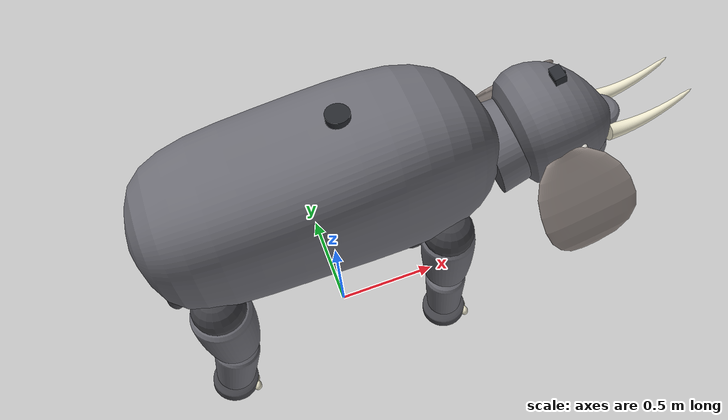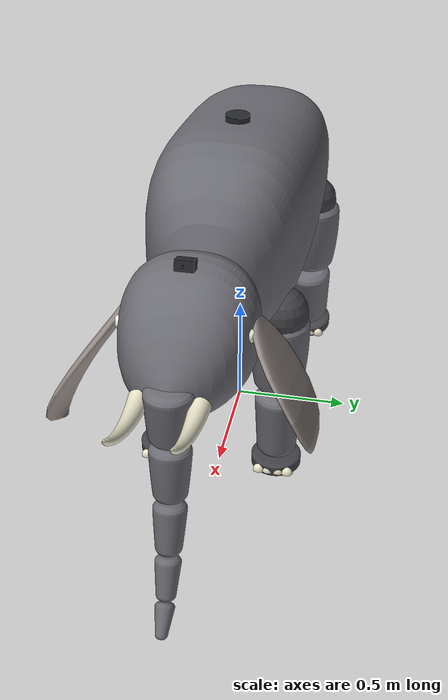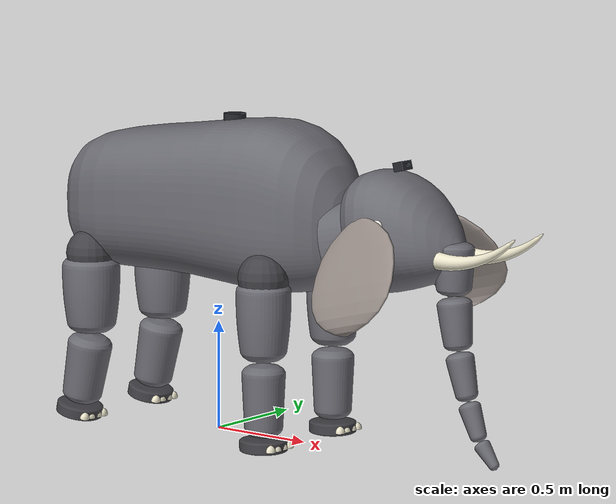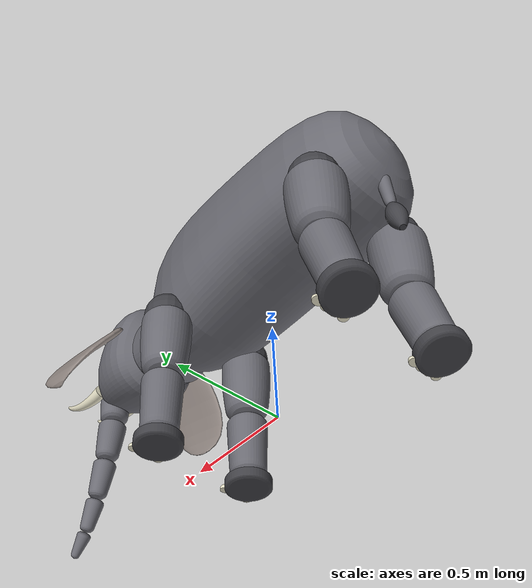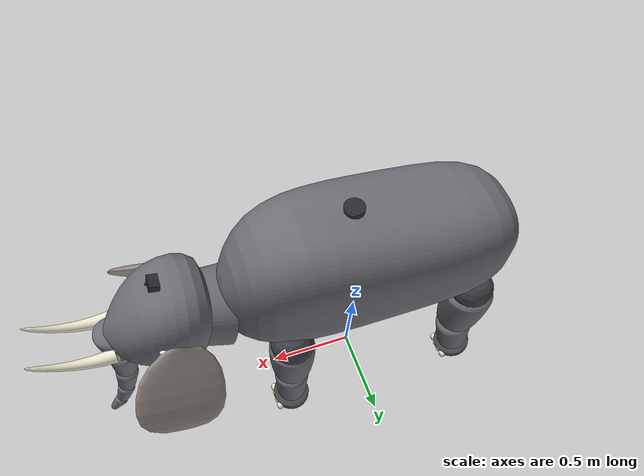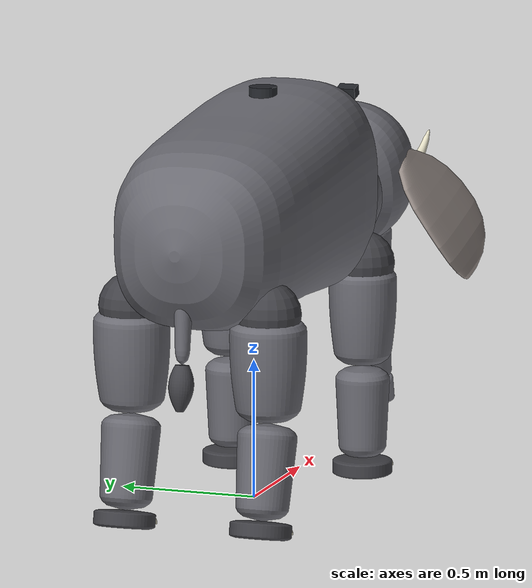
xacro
<?xml version="1.0"?>
<robot name="elephant_robot" xmlns:xacro="http://www.ros.org/wiki/xacro">

  <xacro:property name="MESH" value="package://elephant_robot/meshes"/>

  <!-- ================= geometry constants ================= -->
  <xacro:property name="hip_x_front" value="0.470"/>
  <xacro:property name="hip_x_rear"  value="-0.560"/>
  <xacro:property name="hip_y"       value="0.250"/>
  <xacro:property name="hip_z_front" value="0.780"/>
  <xacro:property name="hip_z_rear"  value="0.790"/>
  <xacro:property name="thigh_len"   value="0.380"/>
  <xacro:property name="shank_len"   value="0.340"/>
  <xacro:property name="foot_h"      value="0.060"/>
  <xacro:property name="knee_rear"   value="0.220"/>

  <xacro:property name="neck_x"     value="0.745"/>
  <xacro:property name="neck_z"     value="0.930"/>
  <xacro:property name="neck_len"   value="0.260"/>
  <xacro:property name="neck_pitch" value="0.250"/>

  <!-- ================= materials ================= -->
  <material name="elephant_grey">
    <color rgba="0.42 0.42 0.45 1.0"/>
  </material>
  <material name="elephant_skin_inner">
    <color rgba="0.58 0.54 0.52 1.0"/>
  </material>
  <material name="elephant_dark">
    <color rgba="0.26 0.26 0.28 1.0"/>
  </material>
  <material name="black">
    <color rgba="0.03 0.03 0.03 1.0"/>
  </material>
  <material name="ivory">
    <color rgba="0.92 0.90 0.80 1.0"/>
  </material>
  <material name="eye_white">
    <color rgba="0.94 0.93 0.90 1.0"/>
  </material>
  <material name="eye_black">
    <color rgba="0.01 0.01 0.01 1.0"/>
  </material>
  <material name="sensor_grey">
    <color rgba="0.15 0.16 0.18 1.0"/>
  </material>

  <!-- ================= inertia helpers ================= -->
  <xacro:macro name="box_inertia" params="m x y z">
    <inertial>
      <mass value="${m}"/>
      <inertia ixx="${(m/12.0)*(y*y + z*z)}" ixy="0.0" ixz="0.0"
               iyy="${(m/12.0)*(x*x + z*z)}" iyz="0.0" izz="${(m/12.0)*(x*x + y*y)}"/>
    </inertial>
  </xacro:macro>

  <xacro:macro name="cyl_inertia" params="m r h">
    <inertial>
      <mass value="${m}"/>
      <inertia ixx="${(m/12.0)*(3.0*r*r + h*h)}" ixy="0.0" ixz="0.0"
               iyy="${(m/12.0)*(3.0*r*r + h*h)}" iyz="0.0" izz="${(m/2.0)*(r*r)}"/>
    </inertial>
  </xacro:macro>

  <!-- ==================================================================
       TORSO
       ================================================================== -->
  <link name="base_link"/>

  <joint name="base_to_torso" type="fixed">
    <parent link="base_link"/>
    <child link="torso_link"/>
    <origin xyz="0 0 0" rpy="0 0 0"/>
  </joint>

  <link name="torso_link">
    <visual>
      <origin xyz="0 0 0" rpy="0 0 0"/>
      <geometry><mesh filename="${MESH}/body.stl"/></geometry>
      <material name="elephant_grey"/>
    </visual>
    <collision>
      <origin xyz="0 0 1.070" rpy="0 ${math.pi/2} 0"/>
      <geometry><cylinder radius="0.340" length="1.300"/></geometry>
    </collision>
    <inertial>
      <mass value="130.0"/>
      <origin xyz="0 0 1.070" rpy="0 0 0"/>
      <inertia ixx="10.942" ixy="0.0" ixz="0.0" iyy="27.167" iyz="0.0" izz="26.243"/>
    </inertial>
  </link>

  <!-- ==================================================================
       NECK + HEAD
       ================================================================== -->
  <link name="neck_link">
    <visual>
      <origin xyz="0 0 0" rpy="0 0 0"/>
      <geometry><mesh filename="${MESH}/neck.stl"/></geometry>
      <material name="elephant_grey"/>
    </visual>
    <collision>
      <origin xyz="0.130 0 0" rpy="0 ${math.pi/2} 0"/>
      <geometry><cylinder radius="0.190" length="0.260"/></geometry>
    </collision>
    <inertial>
      <mass value="12.0"/>
      <origin xyz="0.130 0 0" rpy="0 0 0"/>
      <inertia ixx="1.231" ixy="0.0" ixz="0.0" iyy="1.231" iyz="0.0" izz="0.217"/>
    </inertial>
  </link>

  <joint name="neck_pitch" type="revolute">
    <parent link="torso_link"/>
    <child link="neck_link"/>
    <origin xyz="${neck_x} 0 ${neck_z}" rpy="0 ${-neck_pitch} 0"/>
    <axis xyz="0 1 0"/>
    <limit lower="-0.50" upper="0.60" effort="400.0" velocity="1.0"/>
    <dynamics damping="12.0" friction="2.0"/>
  </joint>

  <link name="head_link">
    <visual>
      <origin xyz="-0.085 0 0" rpy="0 0 0"/>
      <geometry><mesh filename="${MESH}/head.stl"/></geometry>
      <material name="elephant_grey"/>
    </visual>
    <collision>
      <origin xyz="0.170 0 -0.020" rpy="0 0 0"/>
      <geometry><box size="0.500 0.460 0.500"/></geometry>
    </collision>
    <inertial>
      <mass value="30.0"/>
      <origin xyz="0.170 0 -0.020" rpy="0 0 0"/>
      <inertia ixx="3.396" ixy="0.0" ixz="0.0" iyy="3.396" iyz="0.0" izz="3.146"/>
    </inertial>

    <!-- eyes -->
    <visual>
      <origin xyz="0.100  0.228 0.050" rpy="0 0 0"/>
      <geometry><sphere radius="0.026"/></geometry>
      <material name="eye_white"/>
    </visual>
    <visual>
      <origin xyz="0.104  0.246 0.052" rpy="0 0 0"/>
      <geometry><sphere radius="0.013"/></geometry>
      <material name="eye_black"/>
    </visual>
    <visual>
      <origin xyz="0.100 -0.228 0.050" rpy="0 0 0"/>
      <geometry><sphere radius="0.026"/></geometry>
      <material name="eye_white"/>
    </visual>
    <visual>
      <origin xyz="0.104 -0.246 0.052" rpy="0 0 0"/>
      <geometry><sphere radius="0.013"/></geometry>
      <material name="eye_black"/>
    </visual>
  </link>

  <joint name="neck_yaw" type="revolute">
    <parent link="neck_link"/>
    <child link="head_link"/>
    <origin xyz="${neck_len} 0 0" rpy="0 0 0"/>
    <axis xyz="0 0 1"/>
    <limit lower="-0.80" upper="0.80" effort="300.0" velocity="1.2"/>
    <dynamics damping="10.0" friction="1.5"/>
  </joint>

  <link name="left_ear_link">
    <visual>
      <origin xyz="0 0 0" rpy="0 0 0"/>
      <geometry><mesh filename="${MESH}/ear.stl"/></geometry>
      <material name="elephant_skin_inner"/>
    </visual>
    <collision>
      <origin xyz="0 0.100 -0.260" rpy="0 0 0"/>
      <geometry><box size="0.040 0.220 0.520"/></geometry>
    </collision>
    <inertial>
      <mass value="2.0"/>
      <origin xyz="0 0.110 -0.260" rpy="0 0 0"/>
      <inertia ixx="0.096" ixy="0.0" ixz="0.0" iyy="0.093" iyz="0.0" izz="0.019"/>
    </inertial>
  </link>

  <joint name="left_ear_flare" type="revolute">
    <parent link="head_link"/>
    <child link="left_ear_link"/>
    <origin xyz="0.020 0.225 0.100" rpy="0.300 0 0"/>
    <axis xyz="1 0 0"/>
    <limit lower="-0.60" upper="0.60" effort="60.0" velocity="2.0"/>
    <dynamics damping="2.0" friction="0.4"/>
  </joint>

  <link name="right_ear_link">
    <visual>
      <origin xyz="0 0 0" rpy="0 0 0"/>
      <geometry><mesh filename="${MESH}/ear_right.stl"/></geometry>
      <material name="elephant_skin_inner"/>
    </visual>
    <collision>
      <origin xyz="0 -0.100 -0.260" rpy="0 0 0"/>
      <geometry><box size="0.040 0.220 0.520"/></geometry>
    </collision>
    <inertial>
      <mass value="2.0"/>
      <origin xyz="0 -0.110 -0.260" rpy="0 0 0"/>
      <inertia ixx="0.096" ixy="0.0" ixz="0.0" iyy="0.093" iyz="0.0" izz="0.019"/>
    </inertial>
  </link>

  <joint name="right_ear_flare" type="revolute">
    <parent link="head_link"/>
    <child link="right_ear_link"/>
    <origin xyz="0.020 -0.225 0.100" rpy="-0.300 0 0"/>
    <axis xyz="1 0 0"/>
    <limit lower="-0.60" upper="0.60" effort="60.0" velocity="2.0"/>
    <dynamics damping="2.0" friction="0.4"/>
  </joint>

  <!-- ==================================================================
       TUSKS
       ================================================================== -->
  <link name="left_tusk_link">
    <visual>
      <origin xyz="0 0 0" rpy="0 0 0"/>
      <geometry><mesh filename="${MESH}/tusk_left.stl"/></geometry>
      <material name="ivory"/>
    </visual>
    <collision>
      <origin xyz="0.450 0.090 -0.110" rpy="0 0 0"/>
      <geometry><box size="0.360 0.060 0.060"/></geometry>
    </collision>
    <inertial>
      <mass value="2.5"/>
      <origin xyz="0.450 0.090 -0.110" rpy="0 0 0"/>
      <inertia ixx="0.010" ixy="0.0" ixz="0.0" iyy="0.122" iyz="0.0" izz="0.122"/>
    </inertial>
  </link>

  <joint name="head_to_left_tusk" type="fixed">
    <parent link="head_link"/>
    <child link="left_tusk_link"/>
    <origin xyz="0 0 0" rpy="0 0 0"/>
  </joint>

  <link name="right_tusk_link">
    <visual>
      <origin xyz="0 0 0" rpy="0 0 0"/>
      <geometry><mesh filename="${MESH}/tusk_right.stl"/></geometry>
      <material name="ivory"/>
    </visual>
    <collision>
      <origin xyz="0.450 -0.090 -0.110" rpy="0 0 0"/>
      <geometry><box size="0.360 0.060 0.060"/></geometry>
    </collision>
    <inertial>
      <mass value="2.5"/>
      <origin xyz="0.450 -0.090 -0.110" rpy="0 0 0"/>
      <inertia ixx="0.010" ixy="0.0" ixz="0.0" iyy="0.122" iyz="0.0" izz="0.122"/>
    </inertial>
  </link>

  <joint name="head_to_right_tusk" type="fixed">
    <parent link="head_link"/>
    <child link="right_tusk_link"/>
    <origin xyz="0 0 0" rpy="0 0 0"/>
  </joint>

  <xacro:macro name="trunk_segment" params="name parent joint axis_y mesh r0 r1 seg_len mass ox oy oz rpy_y">
    <link name="${name}">
      <visual>
        <origin xyz="0 0 0" rpy="0 0 0"/>
        <geometry><mesh filename="${MESH}/${mesh}"/></geometry>
        <material name="elephant_grey"/>
      </visual>
      <collision>
        <origin xyz="0 0 ${-seg_len/2.0}" rpy="0 0 0"/>
        <geometry><cylinder radius="${(r0+r1)/2.0}" length="${seg_len}"/></geometry>
      </collision>
      <inertial>
        <mass value="${mass}"/>
        <origin xyz="0 0 ${-seg_len/2.0}" rpy="0 0 0"/>
        <inertia ixx="${(mass/12.0)*(3.0*r0*r0 + seg_len*seg_len)}" ixy="0.0" ixz="0.0"
                 iyy="${(mass/12.0)*(3.0*r0*r0 + seg_len*seg_len)}" iyz="0.0" izz="${(mass/2.0)*r0*r0}"/>
      </inertial>
    </link>
    <joint name="${joint}" type="revolute">
      <parent link="${parent}"/>
      <child link="${name}"/>
      <origin xyz="${ox} ${oy} ${oz}" rpy="0 ${rpy_y} 0"/>
      <axis xyz="0 ${axis_y} 0"/>
      <limit lower="-0.70" upper="0.70" effort="120.0" velocity="1.5"/>
      <dynamics damping="4.0" friction="0.6"/>
    </joint>
  </xacro:macro>

  <!-- segment 1 hangs vertically (compensates the upward head pitch) -->
  <xacro:trunk_segment name="trunk_seg1_link" parent="head_link" joint="trunk_base_pitch"
                        axis_y="1" mesh="trunk_seg1.stl" r0="0.088" r1="0.076"
                        seg_len="0.240" mass="12.0" ox="0.315" oy="0.0" oz="-0.075" rpy_y="${neck_pitch}"/>

  <xacro:trunk_segment name="trunk_seg2_link" parent="trunk_seg1_link" joint="trunk_1_pitch"
                        axis_y="1" mesh="trunk_seg2.stl" r0="0.076" r1="0.062"
                        seg_len="0.240" mass="8.0" ox="0.0" oy="0.0" oz="-0.240" rpy_y="-0.120"/>

  <xacro:trunk_segment name="trunk_seg3_link" parent="trunk_seg2_link" joint="trunk_2_pitch"
                        axis_y="1" mesh="trunk_seg3.stl" r0="0.062" r1="0.049"
                        seg_len="0.220" mass="5.0" ox="0.0" oy="0.0" oz="-0.240" rpy_y="-0.120"/>

  <xacro:trunk_segment name="trunk_seg4_link" parent="trunk_seg3_link" joint="trunk_3_pitch"
                        axis_y="1" mesh="trunk_seg4.stl" r0="0.049" r1="0.037"
                        seg_len="0.180" mass="3.5" ox="0.0" oy="0.0" oz="-0.220" rpy_y="-0.130"/>

  <xacro:trunk_segment name="trunk_tip_link" parent="trunk_seg4_link" joint="trunk_4_pitch"
                        axis_y="1" mesh="trunk_tip.stl" r0="0.037" r1="0.023"
                        seg_len="0.140" mass="2.0" ox="0.0" oy="0.0" oz="-0.180" rpy_y="-0.300"/>

  <!-- ==================================================================
       TAIL
       ================================================================== -->
  <link name="tail_base_link">
    <visual>
      <origin xyz="0 0 0" rpy="0 0 0"/>
      <geometry><mesh filename="${MESH}/tail_seg.stl"/></geometry>
      <material name="elephant_grey"/>
    </visual>
    <collision>
      <origin xyz="0 0 -0.210" rpy="0 0 0"/>
      <geometry><cylinder radius="0.032" length="0.420"/></geometry>
    </collision>
    <inertial>
      <mass value="2.5"/>
      <origin xyz="0 0 -0.210" rpy="0 0 0"/>
      <inertia ixx="0.038" ixy="0.0" ixz="0.0" iyy="0.038" iyz="0.0" izz="0.001"/>
    </inertial>
  </link>

  <joint name="tail_pitch" type="revolute">
    <parent link="torso_link"/>
    <child link="tail_base_link"/>
    <origin xyz="-0.710 0 1.050" rpy="0 0.060 0"/>
    <axis xyz="0 1 0"/>
    <limit lower="-0.60" upper="0.60" effort="40.0" velocity="2.0"/>
    <dynamics damping="1.0" friction="0.3"/>
  </joint>

  <link name="tail_tip_link">
    <visual>
      <origin xyz="0 0 0" rpy="0 0 0"/>
      <geometry><mesh filename="${MESH}/tuft.stl"/></geometry>
      <material name="elephant_dark"/>
    </visual>
    <collision>
      <origin xyz="0 0 -0.080" rpy="0 0 0"/>
      <geometry><cylinder radius="0.042" length="0.160"/></geometry>
    </collision>
    <inertial>
      <mass value="0.9"/>
      <origin xyz="0 0 -0.080" rpy="0 0 0"/>
      <inertia ixx="0.001" ixy="0.0" ixz="0.0" iyy="0.001" iyz="0.0" izz="0.001"/>
    </inertial>
  </link>

  <joint name="tail_swing" type="revolute">
    <parent link="tail_base_link"/>
    <child link="tail_tip_link"/>
    <origin xyz="0 0 -0.420" rpy="0 0.100 0"/>
    <axis xyz="0 0 1"/>
    <limit lower="-0.60" upper="0.60" effort="30.0" velocity="2.5"/>
    <dynamics damping="0.8" friction="0.2"/>
  </joint>

  <xacro:macro name="elephant_leg" params="name side hip_x hip_z knee_pitch upper_mesh lower_mesh">
    <xacro:property name="sy" value="${float(side) * hip_y}"/>
    <xacro:property name="sgn" value="${float(side)}"/>

    <!-- hip housing -->
    <link name="${name}_hip_link">
      <visual>
        <origin xyz="0 0 0" rpy="0 0 0"/>
        <geometry><sphere radius="0.115"/></geometry>
        <material name="elephant_dark"/>
      </visual>
      <collision>
        <origin xyz="0 0 0" rpy="0 0 0"/>
        <geometry><sphere radius="0.115"/></geometry>
      </collision>
      <inertial>
        <mass value="3.0"/>
        <origin xyz="0 0 0" rpy="0 0 0"/>
        <inertia ixx="0.016" ixy="0.0" ixz="0.0" iyy="0.016" iyz="0.0" izz="0.016"/>
      </inertial>
    </link>

    <joint name="${name}_hip_abduction" type="revolute">
      <parent link="torso_link"/>
      <child link="${name}_hip_link"/>
      <origin xyz="${hip_x} ${sy} ${hip_z}" rpy="0 0 0"/>
      <axis xyz="1 0 0"/>
      <limit lower="-0.35" upper="0.35" effort="1200.0" velocity="1.5"/>
      <dynamics damping="60.0" friction="6.0"/>
    </joint>

    <!-- thigh -->
    <link name="${name}_thigh_link">
      <visual>
        <origin xyz="0 0 0" rpy="0 0 0"/>
        <geometry><mesh filename="${MESH}/${upper_mesh}"/></geometry>
        <material name="elephant_grey"/>
      </visual>
      <collision>
        <origin xyz="0 0 ${-thigh_len/2.0}" rpy="0 0 0"/>
        <geometry><cylinder radius="0.110" length="${thigh_len}"/></geometry>
      </collision>
      <inertial>
        <mass value="18.0"/>
        <origin xyz="0 0 ${-thigh_len/2.0}" rpy="0 0 0"/>
        <inertia ixx="0.222" ixy="0.0" ixz="0.0" iyy="0.222" iyz="0.0" izz="0.109"/>
      </inertial>
    </link>

    <joint name="${name}_hip_pitch" type="revolute">
      <parent link="${name}_hip_link"/>
      <child link="${name}_thigh_link"/>
      <origin xyz="0 0 0" rpy="0 0 0"/>
      <axis xyz="0 1 0"/>
      <limit lower="-0.90" upper="0.90" effort="1500.0" velocity="1.8"/>
      <dynamics damping="70.0" friction="6.0"/>
    </joint>

    <!-- shank -->
    <link name="${name}_shank_link">
      <visual>
        <origin xyz="0 0 0" rpy="0 0 0"/>
        <geometry><mesh filename="${MESH}/${lower_mesh}"/></geometry>
        <material name="elephant_grey"/>
      </visual>
      <collision>
        <origin xyz="0 0 ${-shank_len/2.0}" rpy="0 0 0"/>
        <geometry><cylinder radius="0.094" length="${shank_len}"/></geometry>
      </collision>
      <inertial>
        <mass value="10.0"/>
        <origin xyz="0 0 ${-shank_len/2.0}" rpy="0 0 0"/>
        <inertia ixx="0.106" ixy="0.0" ixz="0.0" iyy="0.106" iyz="0.0" izz="0.046"/>
      </inertial>
    </link>

    <joint name="${name}_knee_pitch" type="revolute">
      <parent link="${name}_thigh_link"/>
      <child link="${name}_shank_link"/>
      <origin xyz="0 0 ${-thigh_len}" rpy="0 ${knee_pitch} 0"/>
      <axis xyz="0 1 0"/>
      <limit lower="-0.10" upper="1.80" effort="1200.0" velocity="1.8"/>
      <dynamics damping="50.0" friction="5.0"/>
    </joint>

    <!-- foot + toenails -->
    <link name="${name}_foot_link">
      <visual>
        <origin xyz="0 0 0" rpy="0 0 0"/>
        <geometry><mesh filename="${MESH}/foot.stl"/></geometry>
        <material name="elephant_dark"/>
      </visual>
      <visual>
        <origin xyz="0.092  ${sgn*0.062} -0.012" rpy="0 0 0"/>
        <geometry><mesh filename="${MESH}/nail.stl"/></geometry>
        <material name="ivory"/>
      </visual>
      <visual>
        <origin xyz="0.092  ${sgn*0.021} -0.012" rpy="0 0 0"/>
        <geometry><mesh filename="${MESH}/nail.stl"/></geometry>
        <material name="ivory"/>
      </visual>
      <visual>
        <origin xyz="0.092 ${-sgn*0.021} -0.012" rpy="0 0 0"/>
        <geometry><mesh filename="${MESH}/nail.stl"/></geometry>
        <material name="ivory"/>
      </visual>
      <visual>
        <origin xyz="0.092 ${-sgn*0.062} -0.012" rpy="0 0 0"/>
        <geometry><mesh filename="${MESH}/nail.stl"/></geometry>
        <material name="ivory"/>
      </visual>
      <collision>
        <origin xyz="0 0 ${-foot_h/2.0}" rpy="0 0 0"/>
        <geometry><cylinder radius="0.108" length="${foot_h}"/></geometry>
      </collision>
      <inertial>
        <mass value="3.0"/>
        <origin xyz="0 0 ${-foot_h/2.0}" rpy="0 0 0"/>
        <inertia ixx="0.010" ixy="0.0" ixz="0.0" iyy="0.010" iyz="0.0" izz="0.019"/>
      </inertial>
    </link>

    <joint name="${name}_ankle" type="fixed">
      <parent link="${name}_shank_link"/>
      <child link="${name}_foot_link"/>
      <origin xyz="0 0 ${-shank_len}" rpy="0 0 0"/>
    </joint>
  </xacro:macro>

  <xacro:elephant_leg name="fl" side="1"  hip_x="${hip_x_front}" hip_z="${hip_z_front}"
                       knee_pitch="0.0" upper_mesh="leg_upper_front.stl" lower_mesh="leg_lower_front.stl"/>
  <xacro:elephant_leg name="fr" side="-1" hip_x="${hip_x_front}" hip_z="${hip_z_front}"
                       knee_pitch="0.0" upper_mesh="leg_upper_front.stl" lower_mesh="leg_lower_front.stl"/>
  <xacro:elephant_leg name="rl" side="1"  hip_x="${hip_x_rear}"  hip_z="${hip_z_rear}"
                       knee_pitch="${knee_rear}" upper_mesh="leg_upper_rear.stl" lower_mesh="leg_lower_rear.stl"/>
  <xacro:elephant_leg name="rr" side="-1" hip_x="${hip_x_rear}"  hip_z="${hip_z_rear}"
                       knee_pitch="${knee_rear}" upper_mesh="leg_upper_rear.stl" lower_mesh="leg_lower_rear.stl"/>

  <!-- ==================================================================
       SENSORS
       ================================================================== -->
  <link name="camera_link">
    <visual>
      <origin xyz="0 0 0" rpy="0 0 0"/>
      <geometry><box size="0.050 0.070 0.040"/></geometry>
      <material name="sensor_grey"/>
    </visual>
    <collision>
      <origin xyz="0 0 0" rpy="0 0 0"/>
      <geometry><box size="0.050 0.070 0.040"/></geometry>
    </collision>
    <inertial>
      <mass value="0.2"/>
      <origin xyz="0 0 0" rpy="0 0 0"/>
      <inertia ixx="0.00017" ixy="0.0" ixz="0.0" iyy="0.00016" iyz="0.0" izz="0.00012"/>
    </inertial>
  </link>

  <joint name="head_to_camera" type="fixed">
    <parent link="head_link"/>
    <child link="camera_link"/>
    <origin xyz="0.120 0 0.285" rpy="0 0 0"/>
  </joint>

  <link name="camera_optical_frame">
    <visual>
      <origin xyz="0 0 0" rpy="0 0 0"/>
      <geometry><box size="0.010 0.010 0.010"/></geometry>
      <material name="sensor_grey"/>
    </visual>
    <inertial>
      <mass value="0.001"/>
      <origin xyz="0 0 0" rpy="0 0 0"/>
      <inertia ixx="1e-6" ixy="0.0" ixz="0.0" iyy="1e-6" iyz="0.0" izz="1e-6"/>
    </inertial>
  </link>

  <joint name="camera_optical_joint" type="fixed">
    <parent link="camera_link"/>
    <child link="camera_optical_frame"/>
    <origin xyz="0.030 0 0" rpy="${-math.pi/2} 0 ${-math.pi/2}"/>
  </joint>

  <link name="lidar_link">
    <visual>
      <origin xyz="0 0 0" rpy="0 0 0"/>
      <geometry><cylinder radius="0.050" length="0.050"/></geometry>
      <material name="sensor_grey"/>
    </visual>
    <collision>
      <origin xyz="0 0 0" rpy="0 0 0"/>
      <geometry><cylinder radius="0.050" length="0.050"/></geometry>
    </collision>
    <inertial>
      <mass value="0.5"/>
      <origin xyz="0 0 0" rpy="0 0 0"/>
      <inertia ixx="0.00052" ixy="0.0" ixz="0.0" iyy="0.00052" iyz="0.0" izz="0.00052"/>
    </inertial>
  </link>

  <joint name="base_to_lidar" type="fixed">
    <parent link="torso_link"/>
    <child link="lidar_link"/>
    <origin xyz="0.100 0 1.440" rpy="0 0 0"/>
  </joint>

</robot>
